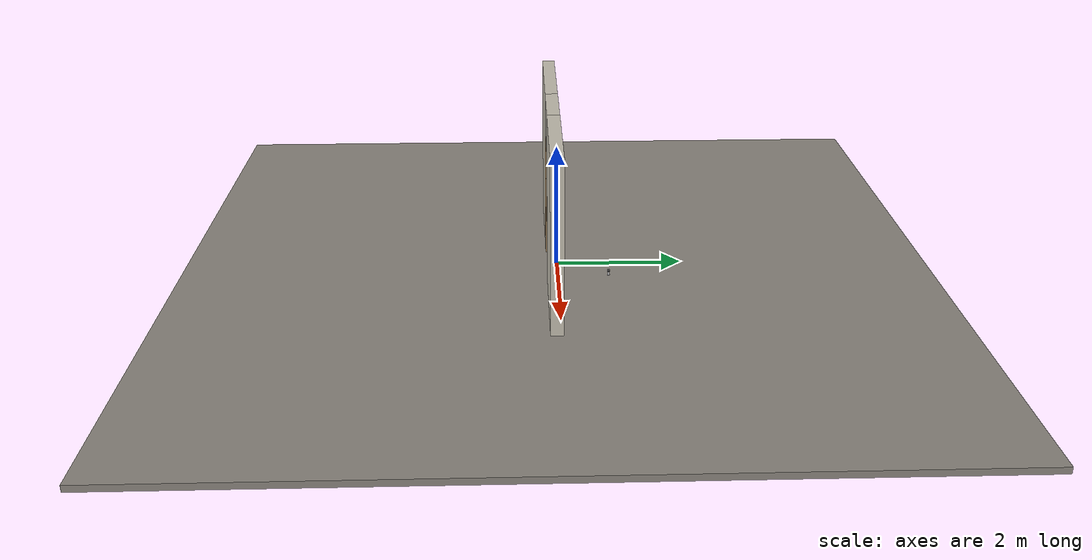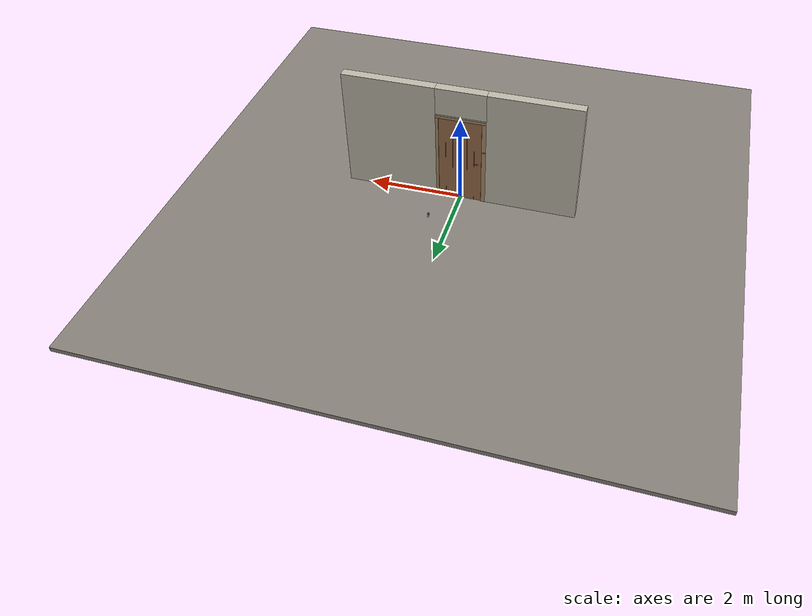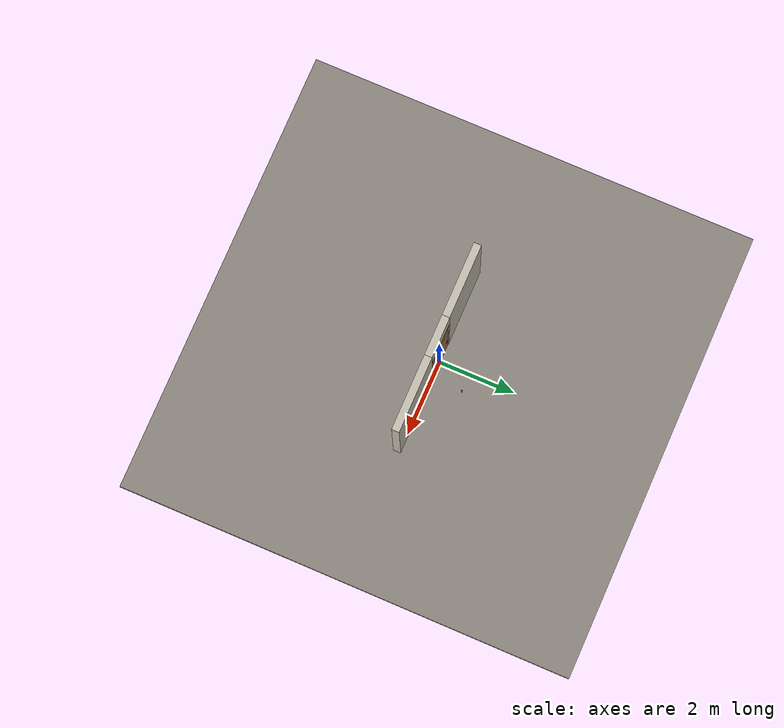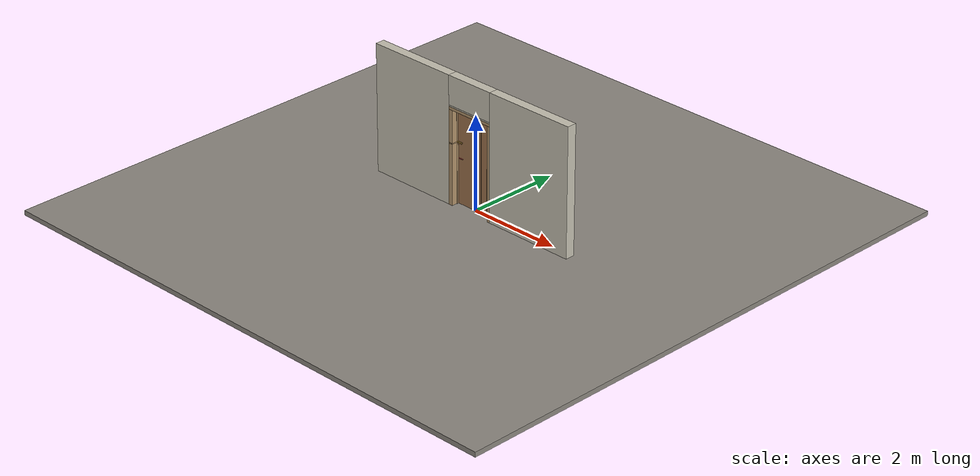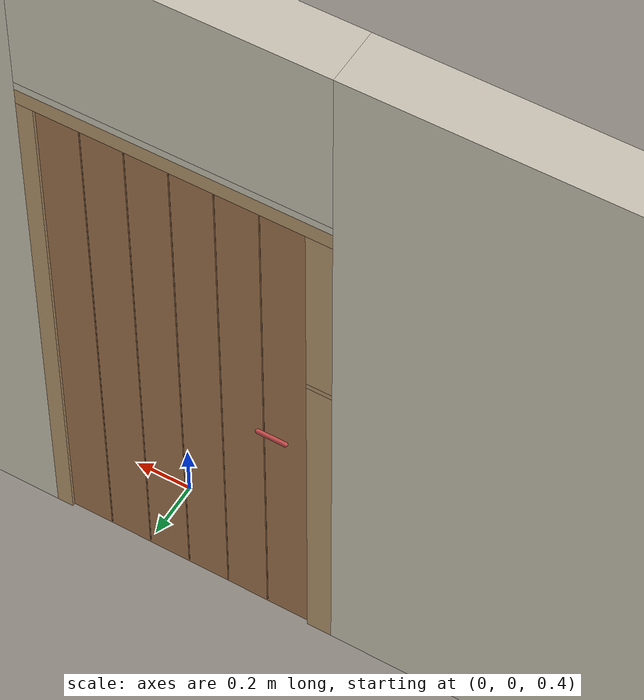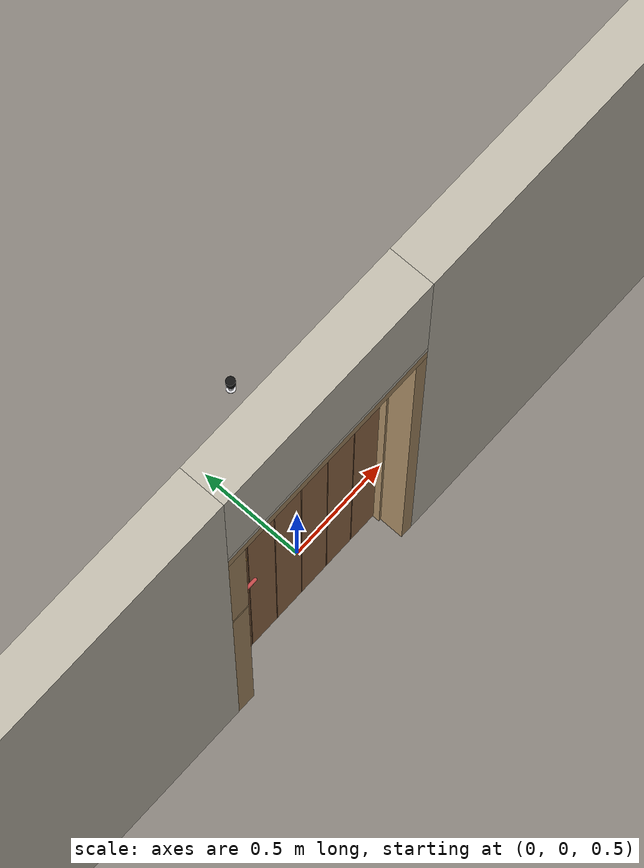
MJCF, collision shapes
<?xml version="1.0" ?>
<mujoco model="db0532_swing_single_full">
  <compiler angle="radian" meshdir="../../hardware" texturedir="../../textures" autolimits="true" inertiafromgeom="false"/>
  <option timestep="0.002" integrator="implicitfast" cone="elliptic" impratio="10" noslip_iterations="3">
    <flag multiccd="enable"/>
  </option>
  <size memory="16M"/>
  <default>
    <geom condim="4" solref="0.005 1" solimp="0.95 0.99 0.001"/>
    <joint solreflimit="0.005 1" solimplimit="0.95 0.99 0.001"/>
    <tendon solreflimit="0.005 1"/>
    <equality solref="0.002 1"/>
  </default>
  <visual>
    <headlight ambient="0.4 0.4 0.4" diffuse="0.7 0.7 0.7" specular="0.2 0.2 0.2"/>
    <quality shadowsize="4096"/>
    <map znear="0.01" zfar="60"/>
  </visual>
  <asset>
    <mesh name="hinge_2af0f4d6ca" file="hinge_2af0f4d6ca.obj"/>
    <mesh name="hinge_jamb_c0c0a62ada" file="hinge_jamb_c0c0a62ada.obj"/>
    <mesh name="house_numbers_ad0a8e8be0" file="house_numbers_ad0a8e8be0.obj"/>
    <mesh name="ring_cc5c941a8a" file="ring_cc5c941a8a.obj"/>
    <material name="mat_floor" rgba="0.55 0.53 0.5 1" specular="0.2" shininess="0.15" reflectance="0"/>
    <material name="mat_wall" rgba="0.78 0.76 0.7 1" specular="0.2" shininess="0.1" reflectance="0"/>
    <material name="mat_leaf" rgba="0.62 0.45 0.3 1" specular="0.2" shininess="0.5" reflectance="0"/>
    <material name="mat_leaf_brace" rgba="0.558 0.405 0.27 1" specular="0.2" shininess="0.2" reflectance="0"/>
    <material name="mat_hinge" rgba="0.65 0.66 0.68 1" specular="0.74" shininess="0.5" reflectance="0.36"/>
    <material name="mat_op_wrought_iron" rgba="0.08 0.08 0.09 1" specular="0.56" shininess="0.25" reflectance="0.24"/>
    <material name="mat_op_brass" rgba="0.85 0.66 0.3 1" specular="0.8" shininess="0.75" reflectance="0.4"/>
    <material name="mat_frame" rgba="0.7 0.58 0.42 1" specular="0.2" shininess="0.5" reflectance="0"/>
    <material name="mat_numbers" rgba="0.05 0.05 0.05 1" specular="0.38" shininess="0.3" reflectance="0.12"/>
    <material name="mat_bumper_stop" rgba="0.08 0.08 0.08 1" specular="0.2" shininess="0.1" reflectance="0"/>
    <material name="mat_stop_base" rgba="0.9 0.9 0.92 1" specular="0.8" shininess="0.9" reflectance="0.4"/>
    <texture name="skybox" type="skybox" builtin="gradient" rgb1="0.6 0.7 0.85" rgb2="0.9 0.92 0.95" width="256" height="256"/>
  </asset>
  <worldbody>
    <light name="sun" pos="1.5 -2.5 4" dir="-0.3 0.5 -0.8" directional="true" diffuse="0.8 0.8 0.8" specular="0.3 0.3 0.3" castshadow="true"/>
    <light name="fill" pos="-1.5 2.5 3" dir="0.3 -0.5 -0.7" directional="true" diffuse="0.35 0.35 0.4" castshadow="false"/>
    <camera name="robot_view" pos="0 -2.569125 1.698475" xyaxes="1 0 0 0 0.26963 0.962964" fovy="52"/>
    <camera name="far_view" pos="0 2.427125 1.698475" xyaxes="-1 0 0 0 -0.26963 0.962964" fovy="52"/>
    <camera name="iso" pos="-1.898575 -2.169425 2.098175" xyaxes="0.741536 -0.670913 0 0.242917 0.268487 0.932151" fovy="46"/>
    <camera name="detail_handle" pos="-0.1715 -0.854 1.27" xyaxes="0.97561 0.219512 0 -0.070934 0.315262 0.94635" fovy="38"/>
    <geom name="floor" type="box" size="6 6 0.05" pos="0 0 -0.05" material="mat_floor" group="0" contype="1" conaffinity="1" friction="0.8 0.005 0.0001" density="2400"/>
    <geom name="wall_left" type="box" size="0.97475 0.1 1.35" pos="-1.52525 -0.071 1.35" material="mat_wall" group="0" contype="1" conaffinity="1" friction="0.6 0.005 0.0001" density="800"/>
    <geom name="wall_right" type="box" size="0.98975 0.1 1.35" pos="1.51025 -0.071 1.35" material="mat_wall" group="0" contype="1" conaffinity="1" friction="0.6 0.005 0.0001" density="800"/>
    <geom name="wall_header" type="box" size="0.5355 0.1 0.306" pos="-0.015 -0.071 2.394" material="mat_wall" group="0" contype="1" conaffinity="1" friction="0.6 0.005 0.0001" density="800"/>
    <geom name="hinge_0_jamb" type="mesh" mesh="hinge_jamb_c0c0a62ada" pos="0.4575 0.029 0.259" quat="0 0 0 1" material="mat_hinge" group="1" contype="0" conaffinity="0" density="7850"/>
    <geom name="hinge_1_jamb" type="mesh" mesh="hinge_jamb_c0c0a62ada" pos="0.4575 0.029 1.0015" quat="0 0 0 1" material="mat_hinge" group="1" contype="0" conaffinity="0" density="7850"/>
    <geom name="hinge_2_jamb" type="mesh" mesh="hinge_jamb_c0c0a62ada" pos="0.4575 0.029 1.814" quat="0 0 0 1" material="mat_hinge" group="1" contype="0" conaffinity="0" density="7850"/>
    <geom name="leaf_aux_bolt_keeper_b" type="box" size="0.014 0.003 0.0005" pos="-0.46 -0.034 1.287" quat="0.5 0.5 0.5 0.5" material="mat_op_brass" group="1" contype="0" conaffinity="0" density="7800"/>
    <geom name="leaf_aux_bolt_keeper_l" type="box" size="0.003 0.01 0.0005" pos="-0.46 -0.045 1.3" quat="0.5 0.5 0.5 0.5" material="mat_op_brass" group="1" contype="0" conaffinity="0" density="7800"/>
    <geom name="leaf_aux_bolt_keeper_t" type="box" size="0.014 0.003 0.0005" pos="-0.46 -0.034 1.313" quat="0.5 0.5 0.5 0.5" material="mat_op_brass" group="1" contype="0" conaffinity="0" density="7800"/>
    <geom name="leaf_aux_bolt_keeper_r" type="box" size="0.003 0.01 0.0005" pos="-0.46 -0.023 1.3" quat="0.5 0.5 0.5 0.5" material="mat_op_brass" group="1" contype="0" conaffinity="0" density="7800"/>
    <geom name="jamb_hinge" type="box" size="0.03 0.1 0.999" pos="0.4905 -0.071 0.999" material="mat_frame" group="0" contype="1" conaffinity="1" friction="0.6 0.005 0.0001" density="750"/>
    <geom name="strike_1300_wall_n" type="box" size="0.045 0.0645 0.01" pos="-0.5055 -0.1065 1.3" material="mat_frame" group="0" contype="1" conaffinity="1" friction="0.6 0.005 0.0001" density="750"/>
    <geom name="strike_1300_wall_p" type="box" size="0.045 0.0275 0.01" pos="-0.5055 0.0015 1.3" material="mat_frame" group="0" contype="1" conaffinity="1" friction="0.6 0.005 0.0001" density="750"/>
    <geom name="strike_1300_back" type="box" size="0.024 0.008 0.01" pos="-0.5265 -0.034 1.3" material="mat_frame" group="0" contype="1" conaffinity="1" friction="0.6 0.005 0.0001" density="750"/>
    <geom name="jamb_strike_0" type="box" size="0.045 0.1 0.645" pos="-0.5055 -0.071 0.645" material="mat_frame" group="0" contype="1" conaffinity="1" friction="0.6 0.005 0.0001" density="750"/>
    <geom name="jamb_strike_1" type="box" size="0.045 0.1 0.344" pos="-0.5055 -0.071 1.654" material="mat_frame" group="0" contype="1" conaffinity="1" friction="0.6 0.005 0.0001" density="750"/>
    <geom name="jamb_head" type="box" size="0.5355 0.1 0.03" pos="-0.015 -0.071 2.028" material="mat_frame" group="0" contype="1" conaffinity="1" friction="0.6 0.005 0.0001" density="750"/>
    <geom name="head_stud" type="box" size="0.5355 0.1 0.015" pos="-0.015 -0.071 2.073" material="mat_wall" group="0" contype="1" conaffinity="1" friction="0.6 0.005 0.0001" density="500"/>
    <geom name="stop_hinge" type="box" size="0.0055 0.016 0.999" pos="0.455 -0.0385 0.999" material="mat_frame" group="0" contype="1" conaffinity="1" friction="0.6 0.005 0.0001" density="750"/>
    <geom name="stop_strike" type="box" size="0.0055 0.016 0.639" pos="-0.455 -0.0385 0.639" material="mat_frame" group="0" contype="1" conaffinity="1" friction="0.6 0.005 0.0001" density="750"/>
    <geom name="stop_strike_1" type="box" size="0.0055 0.016 0.338" pos="-0.455 -0.0385 1.66" material="mat_frame" group="0" contype="1" conaffinity="1" friction="0.6 0.005 0.0001" density="750"/>
    <geom name="stop_head" type="box" size="0.4605 0.016 0.0055" pos="0 -0.0385 1.9925" material="mat_frame" group="0" contype="1" conaffinity="1" friction="0.6 0.005 0.0001" density="750"/>
    <geom name="door_stop_base" type="cylinder" size="0.022 0.003" pos="0.4745 0.8059 0.003" material="mat_stop_base" group="0" contype="1" conaffinity="1" friction="0.6 0.005 0.0001" density="7850"/>
    <geom name="door_stop_post" type="cylinder" size="0.012 0.0245" pos="0.4745 0.8059 0.0305" material="mat_stop_base" group="0" contype="1" conaffinity="1" friction="0.6 0.005 0.0001" density="7850"/>
    <geom name="door_stop_bumper" type="cylinder" size="0.022 0.02" pos="0.4745 0.8059 0.075" material="mat_bumper_stop" group="0" contype="1" conaffinity="1" friction="0.6 0.005 0.0001" density="1100"/>
    <site name="approach_point" pos="0 -1.5 0" quat="1 0 0 0" size="0.05" rgba="0.2 0.9 0.2 0.5" group="4"/>
    <site name="goal_point" pos="0 1.5 0" quat="1 0 0 0" size="0.05" rgba="0.2 0.9 0.2 0.5" group="4"/>
    <site name="door_plane_center" pos="0 0 0.999" quat="1 0 0 0" size="0.02" rgba="0.2 0.9 0.2 0.5" group="4"/>
    <body name="leaf" pos="0.4605 0 0">
      <inertial pos="-0.461397 0.000012 1.004007" mass="57.138348" quat="0.500019 -0.499339 -0.500562 -0.500079" diaginertia="4.095417489 18.563725187 22.636070902"/>
      <joint name="leaf_hinge" type="hinge" axis="0 0 -1" pos="-0.003 0.029 0" limited="true" range="0 1.570796" damping="0.300186" frictionloss="7.882315" armature="0.02"/>
      <geom name="leaf_slab" type="box" size="0.457 0.022 0.9925" pos="-0.46 0 1.0015" material="mat_leaf" group="0" contype="1" conaffinity="1" friction="0.4 0.005 0.0001" density="1"/>
      <geom name="leaf_plank_gap_1" type="box" size="0.002 0.023 0.9825" pos="-0.155333 0 1.0015" material="mat_leaf_brace" group="1" contype="0" conaffinity="0" density="1"/>
      <geom name="leaf_plank_gap_2" type="box" size="0.002 0.023 0.9825" pos="-0.307667 0 1.0015" material="mat_leaf_brace" group="1" contype="0" conaffinity="0" density="1"/>
      <geom name="leaf_plank_gap_3" type="box" size="0.002 0.023 0.9825" pos="-0.46 0 1.0015" material="mat_leaf_brace" group="1" contype="0" conaffinity="0" density="1"/>
      <geom name="leaf_plank_gap_4" type="box" size="0.002 0.023 0.9825" pos="-0.612333 0 1.0015" material="mat_leaf_brace" group="1" contype="0" conaffinity="0" density="1"/>
      <geom name="leaf_plank_gap_5" type="box" size="0.002 0.023 0.9825" pos="-0.764667 0 1.0015" material="mat_leaf_brace" group="1" contype="0" conaffinity="0" density="1"/>
      <geom name="hinge_0" type="mesh" mesh="hinge_2af0f4d6ca" pos="-0.003 0.029 0.259" quat="0 0 0 1" material="mat_hinge" group="1" contype="0" conaffinity="0" density="7850"/>
      <geom name="hinge_1" type="mesh" mesh="hinge_2af0f4d6ca" pos="-0.003 0.029 1.0015" quat="0 0 0 1" material="mat_hinge" group="1" contype="0" conaffinity="0" density="7850"/>
      <geom name="hinge_2" type="mesh" mesh="hinge_2af0f4d6ca" pos="-0.003 0.029 1.814" quat="0 0 0 1" material="mat_hinge" group="1" contype="0" conaffinity="0" density="7850"/>
      <geom name="leaf_ring_pull_n" type="mesh" mesh="ring_cc5c941a8a" pos="-0.812 -0.022 1.05" quat="0 0 -0.707107 0.707107" material="mat_op_wrought_iron" group="1" contype="0" conaffinity="0" density="3000"/>
      <geom name="leaf_ring_pull_col_n" type="capsule" size="0.008 0.05" pos="-0.812 -0.054 0.99" quat="0.707107 0 0.707107 0" material="mat_op_wrought_iron" group="3" contype="1" conaffinity="1" rgba="0.8 0.3 0.3 0.25" friction="0.7 0.01 0.0001" density="3000"/>
      <geom name="leaf_ring_pull_p" type="mesh" mesh="ring_cc5c941a8a" pos="-0.812 0.022 1.05" quat="0 0 0.707107 0.707107" material="mat_op_wrought_iron" group="1" contype="0" conaffinity="0" density="3000"/>
      <geom name="leaf_ring_pull_col_p" type="capsule" size="0.008 0.05" pos="-0.812 0.054 0.99" quat="0.707107 0 0.707107 0" material="mat_op_wrought_iron" group="3" contype="1" conaffinity="1" rgba="0.8 0.3 0.3 0.25" friction="0.7 0.01 0.0001" density="3000"/>
      <geom name="leaf_aux_bolt_plate" type="box" size="0.0595 0.019 0.001" pos="-0.8495 -0.023 1.3" quat="0 0 -0.707107 0.707107" material="mat_op_brass" group="1" contype="0" conaffinity="0" density="7800"/>
      <geom name="leaf_aux_bolt_guide_0_leg_n" type="box" size="0.006 0.002 0.0125" pos="-0.901 -0.0345 1.311" quat="0 0 -0.707107 0.707107" material="mat_op_brass" group="1" contype="0" conaffinity="0" density="7800"/>
      <geom name="leaf_aux_bolt_guide_0_leg_p" type="box" size="0.006 0.002 0.0125" pos="-0.901 -0.0345 1.289" quat="0 0 -0.707107 0.707107" material="mat_op_brass" group="1" contype="0" conaffinity="0" density="7800"/>
      <geom name="leaf_aux_bolt_guide_0_bridge" type="box" size="0.006 0.013 0.002" pos="-0.901 -0.045 1.3" quat="0 0 -0.707107 0.707107" material="mat_op_brass" group="1" contype="0" conaffinity="0" density="7800"/>
      <geom name="leaf_aux_bolt_guide_1_leg_n" type="box" size="0.006 0.002 0.0125" pos="-0.8 -0.0345 1.311" quat="0 0 -0.707107 0.707107" material="mat_op_brass" group="1" contype="0" conaffinity="0" density="7800"/>
      <geom name="leaf_aux_bolt_guide_1_leg_p" type="box" size="0.006 0.002 0.0125" pos="-0.8 -0.0345 1.289" quat="0 0 -0.707107 0.707107" material="mat_op_brass" group="1" contype="0" conaffinity="0" density="7800"/>
      <geom name="leaf_aux_bolt_guide_1_bridge" type="box" size="0.006 0.013 0.002" pos="-0.8 -0.045 1.3" quat="0 0 -0.707107 0.707107" material="mat_op_brass" group="1" contype="0" conaffinity="0" density="7800"/>
      <geom name="house_numbers" type="mesh" mesh="house_numbers_ad0a8e8be0" pos="-0.46 -0.022 1.644" quat="0 0 -0.707107 0.707107" material="mat_numbers" group="2" contype="0" conaffinity="0" density="1000"/>
      <site name="leaf_ring_pull_grip_n" pos="-0.812 -0.054 0.99" quat="1 0 0 0" size="0.012" rgba="0.2 0.9 0.2 0.5" group="4"/>
      <site name="leaf_ring_pull_grip_p" pos="-0.812 0.054 0.99" quat="1 0 0 0" size="0.012" rgba="0.2 0.9 0.2 0.5" group="4"/>
      <site name="leaf_edge_mid" pos="-0.917 0 0.9925" quat="1 0 0 0" size="0.02" rgba="0.2 0.9 0.2 0.5" group="4"/>
      <body name="leaf_aux_bolt" pos="-0.917 -0.034 1.3">
        <inertial pos="0.068563 -0.00492 0" mass="0.111784" quat="0.998595 0 0 -0.05299" diaginertia="0.000012212 0.000071985 0.000082309"/>
        <joint name="leaf_aux_bolt_slide" type="slide" axis="1 0 0" limited="true" range="0 0.045" damping="1" frictionloss="1" armature="0.1" ref="0.045"/>
        <geom name="leaf_aux_bolt_rod" type="capsule" size="0.006 0.044" pos="0.065 0 0" quat="0.707107 0 -0.707107 0" material="mat_op_brass" group="0" contype="1" conaffinity="1" friction="0.6 0.005 0.0001" density="7850"/>
        <geom name="leaf_aux_bolt_knob" type="capsule" size="0.005 0.01" pos="0.08 -0.015 0" quat="0.707107 0.707107 0 0" material="mat_op_brass" group="0" contype="1" conaffinity="1" friction="0.6 0.005 0.0001" density="7850"/>
        <geom name="leaf_aux_bolt_knob_end" type="sphere" size="0.00675" pos="0.08 -0.03 0" material="mat_op_brass" group="1" contype="0" conaffinity="0" density="7850"/>
        <site name="leaf_aux_bolt_grip" pos="0.08 -0.034 0" quat="1 0 0 0" size="0.012" rgba="0.2 0.9 0.2 0.5" group="4"/>
      </body>
    </body>
  </worldbody>
  <sensor>
    <jointpos name="leaf_hinge_pos" joint="leaf_hinge"/>
    <jointvel name="leaf_hinge_vel" joint="leaf_hinge"/>
    <jointpos name="leaf_aux_bolt_slide_pos" joint="leaf_aux_bolt_slide"/>
    <jointvel name="leaf_aux_bolt_slide_vel" joint="leaf_aux_bolt_slide"/>
  </sensor>
</mujoco>
